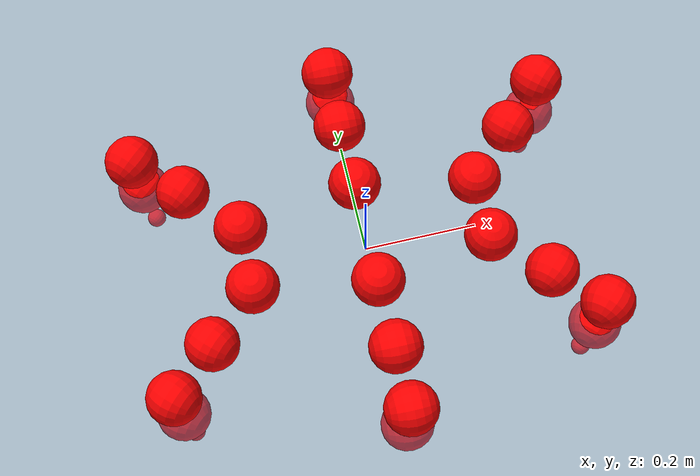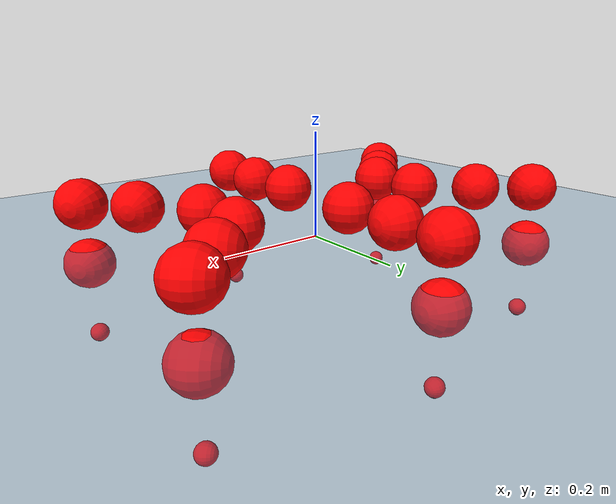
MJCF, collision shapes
<mujoco model="Golem">
  <compiler angle="radian" assetdir="assets" balanceinertia="true" inertiafromgeom="false"/>

  <option timestep="0.005" density="1.2" viscosity="2e-05"/>

  <size nkey="1"/>

  <visual>
    <quality shadowsize="8192"/>
    <map shadowclip="0.5"/>
  </visual>

  <default>
    <default class="/">
      <joint armature="0.01" damping="0.01" frictionloss="0.01"/>
      <geom contype="0" conaffinity="0" group="1" solref="-1000 -80"/>
      <site size="0.01 0.005 0.005" group="5"/>
      <general forcelimited="true" biastype="affine" gainprm="25" biasprm="0 -25 -0.5"/>
      <default class="visual">
        <geom type="mesh" group="2"/>
      </default>
      <default class="collision">
        <geom group="3"/>
      </default>
      <default class="foot">
        <geom size="0.01 0 0" condim="6" group="4" priority="1" solimp="0.015 1 0.01"/>
      </default>
      <default class="reward_collision_sphere">
        <geom group="5" rgba="1 0 0 1"/>
      </default>
    </default>
  </default>

  <asset>
    <texture type="skybox" colorspace="auto" name="//unnamed_texture_0" builtin="gradient" rgb1="0.95 0.95 0.95" rgb2="0.95 0.95 0.95" width="100" height="600"/>
    <texture type="2d" colorspace="auto" name="texplane" builtin="checker" rgb1="0.345 0.575 0.748" rgb2="0.345 0.575 0.748" markrgb="1 1 1" width="512" height="512"/>
    <material name="MatPlane" class="/" texture="texplane" texuniform="true" texrepeat="2 2" specular="0.9"/>
    <mesh name="body" class="/" file="body.stl" scale="0.001 0.001 0.001"/>
    <mesh name="coxa" class="/" file="coxa.stl" scale="0.001 0.001 0.001"/>
    <mesh name="femur" class="/" file="femur.stl" scale="0.001 0.001 0.001"/>
    <mesh name="tibia" class="/" file="tibia.stl" scale="0.001 0.001 0.001"/>
    <mesh name="tarsus" class="/" file="tarsus.stl" scale="0.001 0.001 0.001"/>
  </asset>

  <worldbody>
    <geom name="floor" class="/" size="100 100 0.125" type="plane" group="0" material="MatPlane"/>
    <light name="toplight_shadow" class="/" pos="0 0 5" dir="0.0990148 0.0990148 -0.990148" type="directional" ambient="0.04 0.04 0.04" diffuse="0.55 0.55 0.55" specular="0.12 0.12 0.12"/>
    <light name="toplight_fill" class="/" pos="0 0 5" dir="0.0990148 0.0990148 -0.990148" type="directional" castshadow="false" ambient="0.04 0.04 0.04" diffuse="0.3 0.3 0.3" specular="0.08 0.08 0.08"/>
    <body name="trunk" pos="0.000289206 0.00270501 0.0027962" quat="1 -8.91729e-05 -5.44243e-05 4.25105e-05">
      <inertial pos="0.0022519 0.000548641 -0.00269611" quat="0.999988 0.000905647 0.00458649 -0.0012143" mass="5.87348" diaginertia="0.0395307 0.0101267 0.0198543"/>
      <joint name="//unnamed_joint_0" type="free"/>
      <geom name="//unnamed_geom_1" class="/" pos="0 0 0.073271" quat="1 0 0 0" type="mesh" rgba="0.9 0.9 0.9 1" mesh="body"/>
      <site name="imu" class="/" pos="0.176873 0.00571998 0.12493" size="0.0115627"/>
      <camera name="track" class="/" pos="0 -1.99341 0" quat="0.707107 0.707107 0 0" mode="trackcom"/>
      <camera name="ego_camera" class="/" pos="0.17254 0 0.114486" quat="-0.5 -0.5 0.5 0.5"/>
      <body name="coxa_RR" pos="-0.236293 -0.0828585 0.0741624" quat="0.382381 0.000168283 -0.000123266 -0.924005">
        <inertial pos="7.70295e-05 0.000201329 -0.00257467" quat="0.999934 0.0023831 0.010687 -0.00340343" mass="0.313529" diaginertia="0.0404476 0.0096713 0.0193998"/>
        <joint name="coxa_joint_RR" class="/" pos="0 0 0" axis="-0.00954368 0.00306661 -0.99995" stiffness="0.00345163" range="-3.14872 3.14405" armature="0.0107728" damping="0" frictionloss="0.0116283"/>
        <geom name="//unnamed_geom_2" class="/" type="mesh" rgba="0.2 0.2 0.2 1" mesh="coxa"/>
        <geom name="//unnamed_geom_3" class="reward_collision_sphere" size="0.0462506" pos="-0.039817 0 0"/>
        <body name="femur_RR" pos="0.0778838 -0.00204947 -0.00567797" quat="0.500089 -0.499943 0.500124 0.499845">
          <inertial pos="-0.00285473 -0.00265703 0.000754495" quat="0.999941 -0.00706457 -0.00810775 -0.00163215" mass="0.308451" diaginertia="0.0410122 0.0100737 0.019443"/>
          <joint name="femur_joint_RR" class="/" pos="0 0 0" axis="0.00982848 -0.00280509 -0.999948" range="-3.1638 3.09159" armature="0.01054" damping="0.00570722" frictionloss="0.0124563"/>
          <geom name="//unnamed_geom_4" class="/" type="mesh" rgba="0.9 0.9 0.9 1" mesh="femur"/>
          <geom name="//unnamed_geom_5" class="reward_collision_sphere" size="0.0462506"/>
          <body name="tibia_RR" pos="-0.00156704 -0.108179 -0.000127881" quat="-5.48369e-05 1 2.92665e-06 2.15018e-05">
            <inertial pos="-0.00123148 -0.00119885 0.00105703" quat="0.999989 -0.00254099 -0.00306159 0.00234649" mass="0.305913" diaginertia="0.0400193 0.00928052 0.0183863"/>
            <joint name="tibia_joint_RR" class="/" pos="0 0 0" axis="0.00256871 -0.00534754 0.999982" stiffness="0.000576326" range="-3.08388 3.19175" armature="0.0112327" damping="0.00175649" frictionloss="0.0116195"/>
            <geom name="//unnamed_geom_6" class="/" type="mesh" rgba="0.2 0.2 0.2 1" mesh="tibia"/>
            <geom name="//unnamed_geom_7" class="reward_collision_sphere" size="0.0462506"/>
            <body name="tarsus_RR" pos="0.118532 -0.000196802 0.000954565" quat="1 -1.35154e-05 3.78343e-08 4.57637e-06">
              <inertial pos="0.0813008 6.32148e-05 0.00289227" quat="0.505638 0.50247 0.49673 0.49509" mass="0.310225" diaginertia="0.0417895 0.0100961 0.0196563"/>
              <joint name="tarsus_joint_RR" class="/" pos="0 0 0" axis="-0.00133183 0.000140343 0.999999" stiffness="0.00010011" range="-3.16428 3.18994" armature="0.010475" damping="0.0347849" frictionloss="0.00993633"/>
              <geom name="//unnamed_geom_8" class="/" type="mesh" rgba="0.9 0.9 0.9 1" mesh="tarsus"/>
              <geom name="foot_1" class="foot" size="0.0113025" pos="0.14865 0 0" quat="0 -0.707107 0 0.707107"/>
              <geom name="//unnamed_geom_10" class="reward_collision_sphere" size="0.0462506"/>
              <geom name="//unnamed_geom_11" class="reward_collision_sphere" size="0.017344" pos="0.142678 0 0"/>
              <site name="foot_1" class="foot" pos="0.14865 0 0" quat="0 -0.707107 0 0.707107" size="0.0115627"/>
            </body>
          </body>
        </body>
      </body>
      <body name="coxa_RM" pos="0.000702607 -0.130875 0.0765589" quat="0.707204 0.000144308 -0.00135655 -0.707008">
        <inertial pos="0.00227065 -0.000297849 -0.00268855" quat="0.999903 0.00065073 -0.00736456 0.011812" mass="0.297011" diaginertia="0.0395408 0.00978348 0.0201701"/>
        <joint name="coxa_joint_RM" class="/" pos="0 0 0" axis="-0.00407448 0.00455474 -0.999981" stiffness="0.000311806" range="-3.19113 3.15466" armature="0.0117085" damping="0.00528081" frictionloss="0.0121259"/>
        <geom name="//unnamed_geom_12" class="/" type="mesh" rgba="0.2 0.2 0.2 1" mesh="coxa"/>
        <geom name="//unnamed_geom_13" class="reward_collision_sphere" size="0.0462506" pos="-0.039817 0 0"/>
        <body name="femur_RM" pos="0.0798712 0.00138291 -0.00173366" quat="0.50011 -0.499883 0.500193 0.499814">
          <inertial pos="0.00144948 -0.00286371 -6.85891e-05" quat="0.999924 -0.000265624 -0.00944183 0.00792843" mass="0.312227" diaginertia="0.0411633 0.00960117 0.0195829"/>
          <joint name="femur_joint_RM" class="/" pos="0 0 0" axis="-0.0122522 -0.00535685 -0.999911" stiffness="0.00701525" range="-3.15248 3.1287" armature="0.00995713" damping="0.0241128" frictionloss="0.0115521"/>
          <geom name="//unnamed_geom_14" class="/" type="mesh" rgba="0.9 0.9 0.9 1" mesh="femur"/>
          <geom name="//unnamed_geom_15" class="reward_collision_sphere" size="0.0462506"/>
          <body name="tibia_RM" pos="-0.000303118 -0.106813 -0.000133144" quat="0.000101657 1 -0.000450966 -0.000178294">
            <inertial pos="0.00244248 -2.38199e-05 -0.00104019" quat="0.999987 0.00185687 0.000422293 -0.00479525" mass="0.294855" diaginertia="0.0401857 0.00948841 0.0189299"/>
            <joint name="tibia_joint_RM" class="/" pos="0 0 0" axis="0.00103704 -0.00371454 0.999993" range="-3.16003 3.12057" armature="0.011357" damping="0.015311" frictionloss="0.012402"/>
            <geom name="//unnamed_geom_16" class="/" type="mesh" rgba="0.2 0.2 0.2 1" mesh="tibia"/>
            <geom name="//unnamed_geom_17" class="reward_collision_sphere" size="0.0462506"/>
            <body name="tarsus_RM" pos="0.115154 -0.000174762 0.00273849" quat="1 -5.27309e-05 -0.000219217 0.000119505">
              <inertial pos="0.0816864 -0.00220461 0.00218033" quat="0.499909 0.50007 0.499857 0.500164" mass="0.310078" diaginertia="0.0406434 0.00951917 0.0192339"/>
              <joint name="tarsus_joint_RM" class="/" pos="0 0 0" axis="-0.00246629 -0.00257365 0.999994" range="-3.0877 3.09951" armature="0.0130983" damping="0.00727471" frictionloss="0.011693"/>
              <geom name="//unnamed_geom_18" class="/" type="mesh" rgba="0.9 0.9 0.9 1" mesh="tarsus"/>
              <geom name="foot_2" class="foot" size="0.0124022" pos="0.14865 0 0" quat="0 -0.707107 0 0.707107"/>
              <geom name="//unnamed_geom_20" class="reward_collision_sphere" size="0.0462506"/>
              <geom name="//unnamed_geom_21" class="reward_collision_sphere" size="0.017344" pos="0.142678 0 0"/>
              <site name="foot_2" class="foot" pos="0.14865 0 0" quat="0 -0.707107 0 0.707107" size="0.0115627"/>
            </body>
          </body>
        </body>
      </body>
      <body name="coxa_RF" pos="0.235674 -0.0828797 0.0739654" quat="0.923891 -0.000142634 -0.000106388 -0.382655">
        <inertial pos="-0.00195345 0.00280628 -0.000980701" quat="1 -2.26091e-05 -7.4586e-05 -0.000116099" mass="0.311569" diaginertia="0.0413598 0.0101969 0.0190932"/>
        <joint name="coxa_joint_RF" class="/" pos="0 0 0" axis="0.00415894 -0.00303269 -0.999987" range="-3.16036 3.17167" armature="0.0124112" damping="0.0213045" frictionloss="0.0110619"/>
        <geom name="//unnamed_geom_22" class="/" type="mesh" rgba="0.2 0.2 0.2 1" mesh="coxa"/>
        <geom name="//unnamed_geom_23" class="reward_collision_sphere" size="0.0462506" pos="-0.039817 0 0"/>
        <body name="femur_RF" pos="0.0804786 -0.00202339 0.00200625" quat="0.499152 -0.500124 0.499714 0.501009">
          <inertial pos="0.00276025 -0.002615 -0.00115486" quat="0.999906 -0.0103199 0.0087168 -0.00228298" mass="0.298344" diaginertia="0.0411333 0.00917627 0.0191499"/>
          <joint name="femur_joint_RF" class="/" pos="0 0 0" axis="-0.00178065 0.00060518 -0.999998" range="-3.14103 3.18283" armature="0.010702" damping="0.0143084" frictionloss="0.0126778"/>
          <geom name="//unnamed_geom_24" class="/" type="mesh" rgba="0.9 0.9 0.9 1" mesh="femur"/>
          <geom name="//unnamed_geom_25" class="reward_collision_sphere" size="0.0462506"/>
          <body name="tibia_RF" pos="-0.00150921 -0.105856 -0.000974649" quat="0.000293534 1 7.43378e-05 0.000311388">
            <inertial pos="0.000446569 0.000994841 -0.00125441" quat="0.999999 -0.000708518 0.00080975 0.000791413" mass="0.316814" diaginertia="0.0404152 0.0103167 0.0197458"/>
            <joint name="tibia_joint_RF" class="/" pos="0 0 0" axis="-0.000397968 0.000155166 1" stiffness="0.00155676" range="-3.17471 3.13916" armature="0.0102258" damping="0.0057267" frictionloss="0.0115797"/>
            <geom name="//unnamed_geom_26" class="/" type="mesh" rgba="0.2 0.2 0.2 1" mesh="tibia"/>
            <geom name="//unnamed_geom_27" class="reward_collision_sphere" size="0.0462506"/>
            <body name="tarsus_RF" pos="0.11358 0.000195173 0.00191999" quat="1 -2.99183e-05 0.000206515 0.000136941">
              <inertial pos="0.0798289 0.00121143 -0.000515467" quat="0.502814 0.501817 0.498952 0.496392" mass="0.312458" diaginertia="0.0417525 0.00973772 0.0204119"/>
              <joint name="tarsus_joint_RF" class="/" pos="0 0 0" axis="0.0118232 0.00754221 0.999902" range="-3.19302 3.10582" armature="0.0130389" damping="0.0108068" frictionloss="0.00993647"/>
              <geom name="//unnamed_geom_28" class="/" type="mesh" rgba="0.9 0.9 0.9 1" mesh="tarsus"/>
              <geom name="foot_3" class="foot" size="0.0123507" pos="0.14865 0 0" quat="0 -0.707107 0 0.707107"/>
              <geom name="//unnamed_geom_30" class="reward_collision_sphere" size="0.0462506"/>
              <geom name="//unnamed_geom_31" class="reward_collision_sphere" size="0.017344" pos="0.142678 0 0"/>
              <site name="foot_3" class="foot" pos="0.14865 0 0" quat="0 -0.707107 0 0.707107" size="0.0115627"/>
            </body>
          </body>
        </body>
      </body>
      <body name="coxa_LR" pos="-0.23611 0.082124 0.0770192" quat="0.382499 5.58686e-05 0.000101486 0.923956">
        <inertial pos="-0.000551767 0.00255817 0.000916481" quat="1 0.00011408 -2.91291e-05 -0.000162606" mass="0.308155" diaginertia="0.0418233 0.0100023 0.0207892"/>
        <joint name="coxa_joint_LR" class="/" pos="0 0 0" axis="0.00197803 -0.00310221 -0.999993" stiffness="0.0097689" range="-3.17792 3.08317" armature="0.00999204" damping="0" frictionloss="0.0105385"/>
        <geom name="//unnamed_geom_32" class="/" type="mesh" rgba="0.2 0.2 0.2 1" mesh="coxa"/>
        <geom name="//unnamed_geom_33" class="reward_collision_sphere" size="0.0462506" pos="-0.039817 0 0"/>
        <body name="femur_LR" pos="0.081361 -0.00133984 0.00212204" quat="0.500077 -0.500134 0.499943 0.499846">
          <inertial pos="-0.00245517 -0.000700067 0.000447154" quat="0.999904 0.00944153 -0.00068273 0.0101601" mass="0.308737" diaginertia="0.0406586 0.00994302 0.0196511"/>
          <joint name="femur_joint_LR" class="/" pos="0 0 0" axis="0.00562976 0.0119146 0.999913" stiffness="0.00249747" range="-3.09732 3.15661" armature="0.012202" damping="0" frictionloss="0.0117811"/>
          <geom name="//unnamed_geom_34" class="/" type="mesh" rgba="0.9 0.9 0.9 1" mesh="femur"/>
          <geom name="//unnamed_geom_35" class="reward_collision_sphere" size="0.0462506"/>
          <body name="tibia_LR" pos="-0.00181207 -0.108386 0.000873272" quat="-0.000399578 1 -0.000164748 -1.8937e-05">
            <inertial pos="-0.00084011 -0.00083906 4.57114e-05" quat="0.999997 0.00253578 0.000597375 0.0003367" mass="0.329331" diaginertia="0.0421098 0.00992458 0.0204063"/>
            <joint name="tibia_joint_LR" class="/" pos="0 0 0" axis="0.00676487 -0.0109337 -0.999917" range="-3.19582 3.10272" armature="0.0119442" damping="0" frictionloss="0.0111084"/>
            <geom name="//unnamed_geom_36" class="/" type="mesh" rgba="0.2 0.2 0.2 1" mesh="tibia"/>
            <geom name="//unnamed_geom_37" class="reward_collision_sphere" size="0.0462506"/>
            <body name="tarsus_LR" pos="0.115887 0.00124536 0.00206347" quat="1 -0.000121571 -0.000179384 -0.000132282">
              <inertial pos="0.0796058 0.000131644 0.000258695" quat="0.499624 0.50065 0.499901 0.499824" mass="0.307745" diaginertia="0.0424743 0.00983775 0.0204263"/>
              <joint name="tarsus_joint_LR" class="/" pos="0 0 0" axis="-0.00366703 -0.000622779 -0.999993" range="-3.16933 3.10959" armature="0.0112795" damping="0" frictionloss="0.0129863"/>
              <geom name="//unnamed_geom_38" class="/" type="mesh" rgba="0.9 0.9 0.9 1" mesh="tarsus"/>
              <geom name="foot_4" class="foot" size="0.0128046" pos="0.14865 0 0" quat="0.707107 0 -0.707107 0"/>
              <geom name="//unnamed_geom_40" class="reward_collision_sphere" size="0.0462506"/>
              <geom name="//unnamed_geom_41" class="reward_collision_sphere" size="0.017344" pos="0.142678 0 0"/>
              <site name="foot_4" class="foot" pos="0.14865 0 0" quat="0.707107 0 -0.707107 0" size="0.0115627"/>
            </body>
          </body>
        </body>
      </body>
      <body name="coxa_LM" pos="0.00150498 0.131459 0.0745249" quat="0.707568 0.000158634 -0.00151039 0.706644">
        <inertial pos="0.00224961 -0.00252896 -0.00146109" quat="0.999919 0.00152717 0.0072063 -0.0104238" mass="0.300113" diaginertia="0.0385108 0.00952528 0.019017"/>
        <joint name="coxa_joint_LM" class="/" pos="0 0 0" axis="0.000766358 -0.0019498 -0.999998" range="-3.10878 3.11993" armature="0.0131405" damping="0.0240201" frictionloss="0.0126091"/>
        <geom name="//unnamed_geom_42" class="/" type="mesh" rgba="0.2 0.2 0.2 1" mesh="coxa"/>
        <geom name="//unnamed_geom_43" class="reward_collision_sphere" size="0.0462506" pos="-0.039817 0 0"/>
        <body name="femur_LM" pos="0.0753089 0.00139687 -0.000285924" quat="0.499942 -0.499364 0.500816 0.499877">
          <inertial pos="0.00285581 -0.00158213 -0.000509009" quat="0.999999 -0.0013016 0.00108644 -0.000243197" mass="0.317038" diaginertia="0.0436352 0.0101822 0.0207802"/>
          <joint name="femur_joint_LM" class="/" pos="0 0 0" axis="-0.0137084 -0.000536059 0.999906" stiffness="0.0061395" range="-3.13498 3.10429" armature="0.0130228" damping="0.00100274" frictionloss="0.0117898"/>
          <geom name="//unnamed_geom_44" class="/" type="mesh" rgba="0.9 0.9 0.9 1" mesh="femur"/>
          <geom name="//unnamed_geom_45" class="reward_collision_sphere" size="0.0462506"/>
          <body name="tibia_LM" pos="-0.00348176 -0.107257 -0.00093983" quat="0.00013553 1 5.3812e-05 0.000200762">
            <inertial pos="0.00109221 -0.000171132 0.00221038" quat="0.999922 0.00307951 -0.00906 0.00807964" mass="0.299375" diaginertia="0.0424043 0.00995635 0.0202469"/>
            <joint name="tibia_joint_LM" class="/" pos="0 0 0" axis="-0.00552433 -0.00700762 -0.99996" range="-3.14223 3.18128" armature="0.0120395" damping="0.0158133" frictionloss="0.00994358"/>
            <geom name="//unnamed_geom_46" class="/" type="mesh" rgba="0.2 0.2 0.2 1" mesh="tibia"/>
            <geom name="//unnamed_geom_47" class="reward_collision_sphere" size="0.0462506"/>
            <body name="tarsus_LM" pos="0.113671 0.000260554 0.00236684" quat="1 2.35017e-05 -3.14614e-05 -0.000464493">
              <inertial pos="0.0771303 0.000656657 -0.00274134" quat="0.499844 0.4995 0.500162 0.500493" mass="0.320344" diaginertia="0.0400459 0.00973326 0.020307"/>
              <joint name="tarsus_joint_LM" class="/" pos="0 0 0" axis="-0.00337611 -0.00245902 -0.999991" stiffness="0.00336797" range="-3.14871 3.16946" armature="0.0121931" damping="0.0147843" frictionloss="0.0131065"/>
              <geom name="//unnamed_geom_48" class="/" type="mesh" rgba="0.9 0.9 0.9 1" mesh="tarsus"/>
              <geom name="foot_5" class="foot" size="0.012838" pos="0.14865 0 0" quat="0.707107 0 -0.707107 0"/>
              <geom name="//unnamed_geom_50" class="reward_collision_sphere" size="0.0462506"/>
              <geom name="//unnamed_geom_51" class="reward_collision_sphere" size="0.017344" pos="0.142678 0 0"/>
              <site name="foot_5" class="foot" pos="0.14865 0 0" quat="0.707107 0 -0.707107 0" size="0.0115627"/>
            </body>
          </body>
        </body>
      </body>
      <body name="coxa_LF" pos="0.235928 0.0834868 0.0734164" quat="0.923805 0.000275013 0.000109458 0.382863">
        <inertial pos="0.000698676 -0.000532911 -0.00254037" quat="0.99993 -0.00527766 0.00900905 -0.00561436" mass="0.298265" diaginertia="0.0406631 0.00980029 0.0196012"/>
        <joint name="coxa_joint_LF" class="/" pos="0 0 0" axis="0.00137185 0.00285886 -0.999995" stiffness="0.0248028" range="-3.19624 3.1299" armature="0.012101" damping="0.0174591" frictionloss="0.0101422"/>
        <geom name="//unnamed_geom_52" class="/" type="mesh" rgba="0.2 0.2 0.2 1" mesh="coxa"/>
        <geom name="//unnamed_geom_53" class="reward_collision_sphere" size="0.0462506" pos="-0.039817 0 0"/>
        <body name="femur_LF" pos="0.0787639 -0.000447917 -6.26023e-05" quat="0.499898 -0.500148 0.499904 0.50005">
          <inertial pos="-0.000248821 0.000365738 -0.000818381" quat="0.999958 -0.00387113 0.00184398 0.0081018" mass="0.298313" diaginertia="0.0402387 0.00964951 0.0185564"/>
          <joint name="femur_joint_LF" class="/" pos="0 0 0" axis="-0.00354803 -0.00182468 0.999992" range="-3.08737 3.15929" armature="0.0122492" damping="0.0113121" frictionloss="0.0105882"/>
          <geom name="//unnamed_geom_54" class="/" type="mesh" rgba="0.9 0.9 0.9 1" mesh="femur"/>
          <geom name="//unnamed_geom_55" class="reward_collision_sphere" size="0.0462506"/>
          <body name="tibia_LF" pos="-0.00111395 -0.107758 0.00246736" quat="0.000162412 1 0.000116652 0.000203191">
            <inertial pos="0.000251078 0.00216956 0.00276031" quat="0.999951 0.0080885 0.00559876 -0.00139719" mass="0.298202" diaginertia="0.04011 0.00974262 0.0197716"/>
            <joint name="tibia_joint_LF" class="/" pos="0 0 0" axis="0.000832202 -0.000189393 -1" range="-3.133 3.12501" armature="0.00991242" damping="0" frictionloss="0.0131888"/>
            <geom name="//unnamed_geom_56" class="/" type="mesh" rgba="0.2 0.2 0.2 1" mesh="tibia"/>
            <geom name="//unnamed_geom_57" class="reward_collision_sphere" size="0.0462506"/>
            <body name="tarsus_LF" pos="0.119829 0.00138504 0.000636272" quat="1 -0.000185624 -3.20248e-05 1.41801e-05">
              <inertial pos="0.0812824 -0.000868535 -0.00279748" quat="0.502011 0.503747 0.503702 0.490416" mass="0.327875" diaginertia="0.0417875 0.0103044 0.0208625"/>
              <joint name="tarsus_joint_LF" class="/" pos="0 0 0" axis="-0.00283326 -0.0139392 -0.999899" stiffness="0.0347287" range="-3.17853 3.19394" armature="0.0113783" damping="0.0200498" frictionloss="0.0120238"/>
              <geom name="//unnamed_geom_58" class="/" type="mesh" rgba="0.9 0.9 0.9 1" mesh="tarsus"/>
              <geom name="foot_6" class="foot" size="0.011566" pos="0.14865 0 0" quat="0.707107 0 -0.707107 0"/>
              <geom name="//unnamed_geom_60" class="reward_collision_sphere" size="0.0462506"/>
              <geom name="//unnamed_geom_61" class="reward_collision_sphere" size="0.017344" pos="0.142678 0 0"/>
              <site name="foot_6" class="foot" pos="0.14865 0 0" quat="0.707107 0 -0.707107 0" size="0.0115627"/>
            </body>
          </body>
        </body>
      </body>
    </body>
  </worldbody>

  <contact>
    <pair class="/" geom1="floor" geom2="foot_1" name="//unnamed_contact_0"/>
    <pair class="/" geom1="floor" geom2="foot_2" name="//unnamed_contact_1"/>
    <pair class="/" geom1="floor" geom2="foot_3" name="//unnamed_contact_2"/>
    <pair class="/" geom1="floor" geom2="foot_4" name="//unnamed_contact_3"/>
    <pair class="/" geom1="floor" geom2="foot_5" name="//unnamed_contact_4"/>
    <pair class="/" geom1="floor" geom2="foot_6" name="//unnamed_contact_5"/>
  </contact>

  <actuator>
    <general name="coxa_joint_RR" class="/" joint="coxa_joint_RR" forcerange="-8.31919 8.31919" gainprm="27.4605" biasprm="0 -27.4605 -0.59084"/>
    <general name="femur_joint_RR" class="/" joint="femur_joint_RR" forcerange="-8.39652 8.39652" gainprm="27.4605" biasprm="0 -27.4605 -0.59084"/>
    <general name="tibia_joint_RR" class="/" joint="tibia_joint_RR" forcerange="-8.46848 8.46848" gainprm="27.4605" biasprm="0 -27.4605 -0.59084"/>
    <general name="tarsus_joint_RR" class="/" joint="tarsus_joint_RR" forcerange="-9.08418 9.08418" gainprm="27.4605" biasprm="0 -27.4605 -0.59084"/>
    <general name="coxa_joint_RM" class="/" joint="coxa_joint_RM" forcerange="-8.45081 8.45081" gainprm="27.4605" biasprm="0 -27.4605 -0.59084"/>
    <general name="femur_joint_RM" class="/" joint="femur_joint_RM" forcerange="-8.09989 8.09989" gainprm="27.4605" biasprm="0 -27.4605 -0.59084"/>
    <general name="tibia_joint_RM" class="/" joint="tibia_joint_RM" forcerange="-7.60587 7.60587" gainprm="27.4605" biasprm="0 -27.4605 -0.59084"/>
    <general name="tarsus_joint_RM" class="/" joint="tarsus_joint_RM" forcerange="-8.27518 8.27518" gainprm="27.4605" biasprm="0 -27.4605 -0.59084"/>
    <general name="coxa_joint_RF" class="/" joint="coxa_joint_RF" forcerange="-8.27286 8.27286" gainprm="27.4605" biasprm="0 -27.4605 -0.59084"/>
    <general name="femur_joint_RF" class="/" joint="femur_joint_RF" forcerange="-7.56149 7.56149" gainprm="27.4605" biasprm="0 -27.4605 -0.59084"/>
    <general name="tibia_joint_RF" class="/" joint="tibia_joint_RF" forcerange="-8.57361 8.57361" gainprm="27.4605" biasprm="0 -27.4605 -0.59084"/>
    <general name="tarsus_joint_RF" class="/" joint="tarsus_joint_RF" forcerange="-9.33019 9.33019" gainprm="27.4605" biasprm="0 -27.4605 -0.59084"/>
    <general name="coxa_joint_LR" class="/" joint="coxa_joint_LR" forcerange="-8.46688 8.46688" gainprm="27.4605" biasprm="0 -27.4605 -0.59084"/>
    <general name="femur_joint_LR" class="/" joint="femur_joint_LR" forcerange="-8.12441 8.12441" gainprm="27.4605" biasprm="0 -27.4605 -0.59084"/>
    <general name="tibia_joint_LR" class="/" joint="tibia_joint_LR" forcerange="-8.76341 8.76341" gainprm="27.4605" biasprm="0 -27.4605 -0.59084"/>
    <general name="tarsus_joint_LR" class="/" joint="tarsus_joint_LR" forcerange="-9.22465 9.22465" gainprm="27.4605" biasprm="0 -27.4605 -0.59084"/>
    <general name="coxa_joint_LM" class="/" joint="coxa_joint_LM" forcerange="-8.94726 8.94726" gainprm="27.4605" biasprm="0 -27.4605 -0.59084"/>
    <general name="femur_joint_LM" class="/" joint="femur_joint_LM" forcerange="-8.45313 8.45313" gainprm="27.4605" biasprm="0 -27.4605 -0.59084"/>
    <general name="tibia_joint_LM" class="/" joint="tibia_joint_LM" forcerange="-8.63753 8.63753" gainprm="27.4605" biasprm="0 -27.4605 -0.59084"/>
    <general name="tarsus_joint_LM" class="/" joint="tarsus_joint_LM" forcerange="-8.12135 8.12135" gainprm="27.4605" biasprm="0 -27.4605 -0.59084"/>
    <general name="coxa_joint_LF" class="/" joint="coxa_joint_LF" forcerange="-8.64713 8.64713" gainprm="27.4605" biasprm="0 -27.4605 -0.59084"/>
    <general name="femur_joint_LF" class="/" joint="femur_joint_LF" forcerange="-8.20312 8.20312" gainprm="27.4605" biasprm="0 -27.4605 -0.59084"/>
    <general name="tibia_joint_LF" class="/" joint="tibia_joint_LF" forcerange="-8.87079 8.87079" gainprm="27.4605" biasprm="0 -27.4605 -0.59084"/>
    <general name="tarsus_joint_LF" class="/" joint="tarsus_joint_LF" forcerange="-7.56161 7.56161" gainprm="27.4605" biasprm="0 -27.4605 -0.59084"/>
  </actuator>

  <sensor>
    <gyro site="imu" name="imu_angular_velocity"/>
    <velocimeter site="imu" name="imu_linear_velocity"/>
    <framelinvel objtype="site" objname="foot_1" name="foot_1_global_linear_velocity"/>
    <framelinvel objtype="site" objname="foot_2" name="foot_2_global_linear_velocity"/>
    <framelinvel objtype="site" objname="foot_3" name="foot_3_global_linear_velocity"/>
    <framelinvel objtype="site" objname="foot_4" name="foot_4_global_linear_velocity"/>
    <framelinvel objtype="site" objname="foot_5" name="foot_5_global_linear_velocity"/>
    <framelinvel objtype="site" objname="foot_6" name="foot_6_global_linear_velocity"/>
  </sensor>

  <keyframe>
    <key name="home" qpos="0 0 0.1457 1 0 0 0 0 0 0 0 0 0 0 0 0 0 0 0 0 0 0 0 0 0 0 0 0 0 0 0"/>
  </keyframe>
</mujoco>
